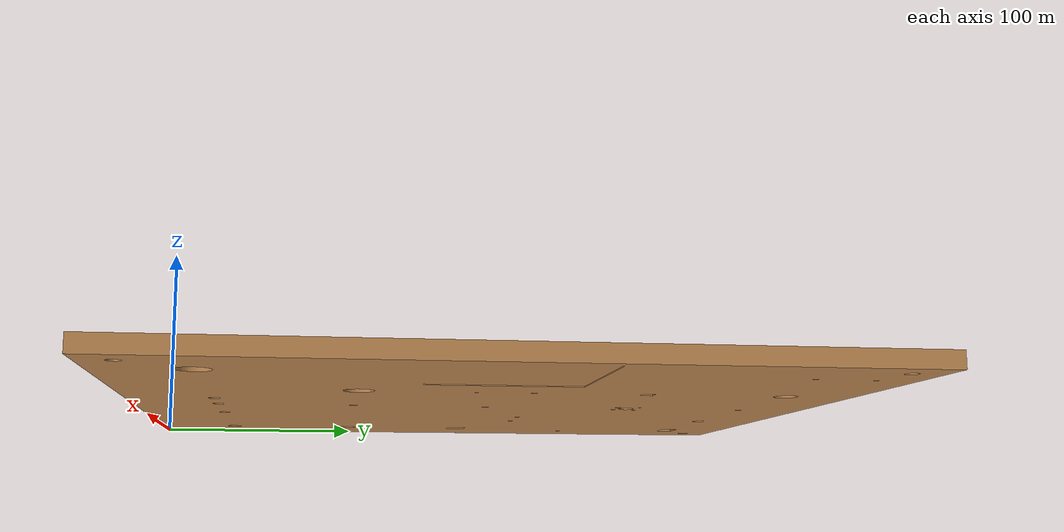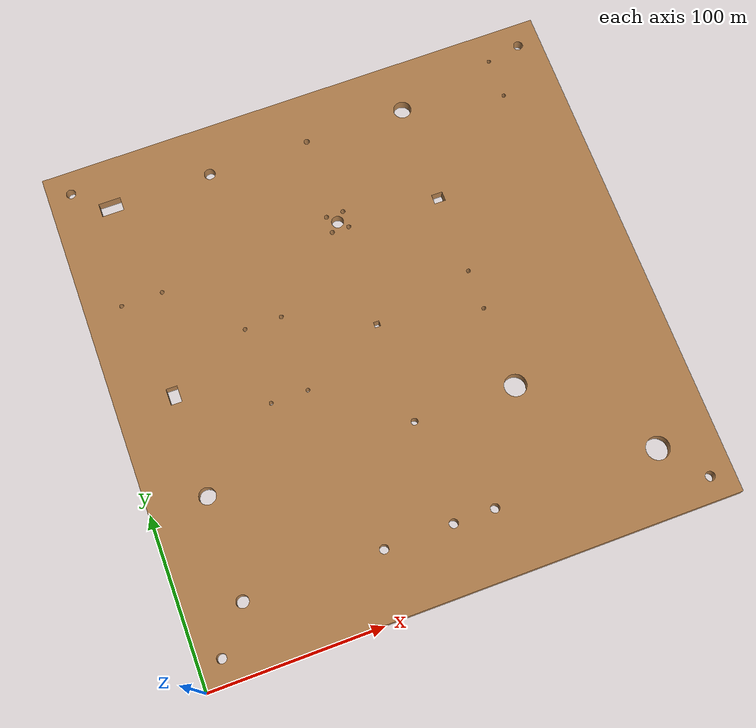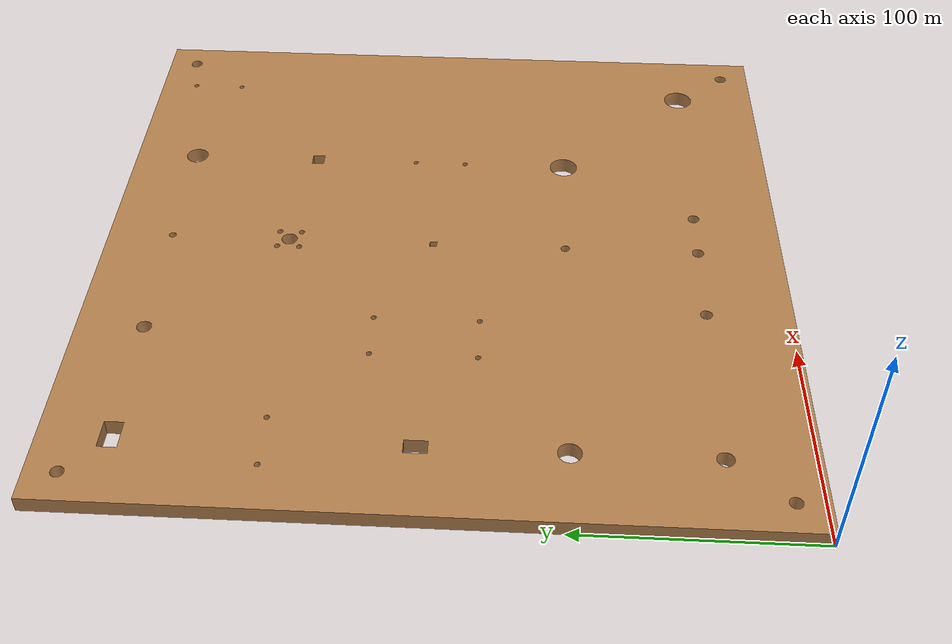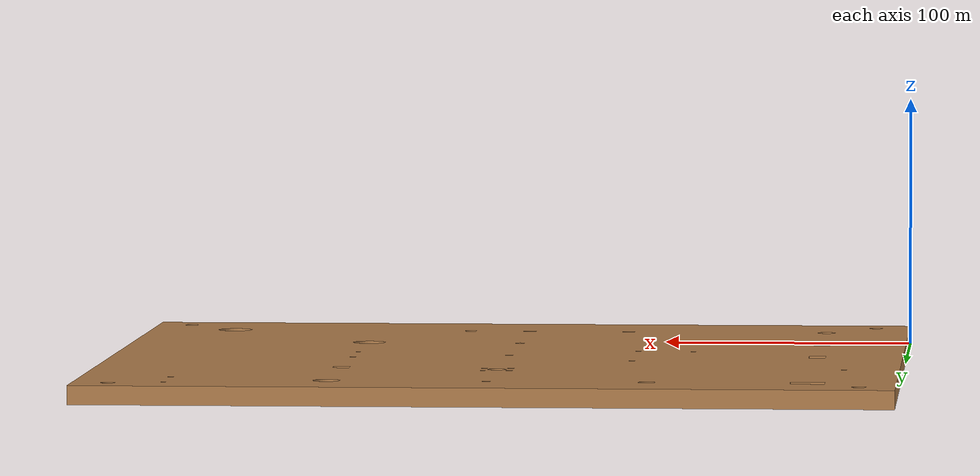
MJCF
<mujoco model="GMC_Laser_Plate_Virtual">
  <asset>
    <mesh file="../task1_stl_files_correct_pos/GMC_Laser_Plate_Virtual.stl" name="gmcplate mesh" scale="0.8 0.8 0.8"/>
    <texture file="../textures/red-wood.png" type="2d" name="tex-gmcplate" />
    <material name="gmcplate" reflectance="0.7" texrepeat="15 15" texture="tex-gmcplate" texuniform="true"/>
  </asset>
  <worldbody>
    <body>
      <body name="object">
        <geom pos="0 0 0" mesh="gmcplate mesh" type="mesh" solimp="0.998 0.998 0.001" solref="0.001 1" density="50" friction="0.95 0.3 0.1"  material="gmcplate" group="0" condim="4"/>
      </body>
      <site rgba="0 0 0 0" size="0.005" pos="0 0 0" name="bottom_site"/>
      <site rgba="0 0 0 0" size="0.005" pos="0 0 0.05" name="top_site"/>
      <site rgba="0 0 0 0" size="0.005" pos="-0.03 -0.03 0" name="horizontal_radius_site"/>
    </body>
  </worldbody>
</mujoco>
